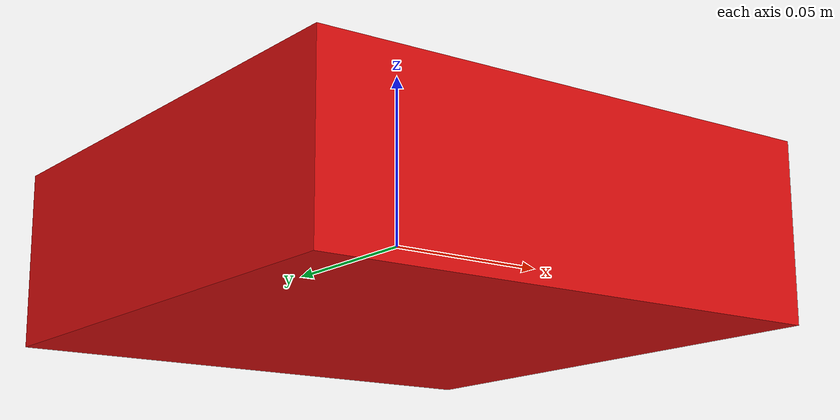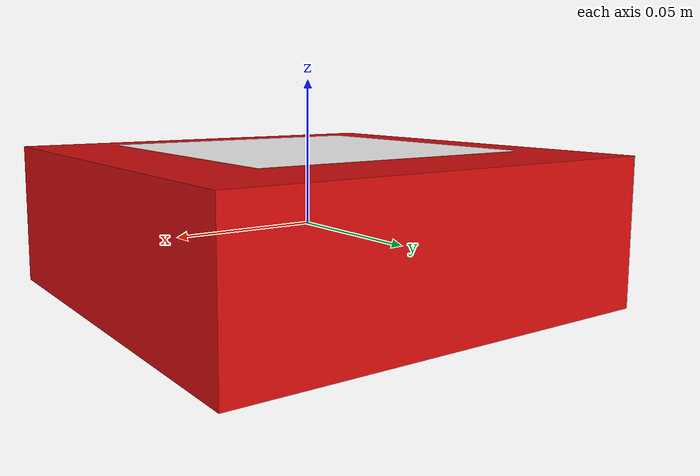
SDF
<?xml version='1.0' encoding='utf-8'?>
<sdf version="1.9">
  <model name="payload_2">
    <link name="body">
      <inertial>
        <mass>1.133981</mass>
        <inertia>
          <ixx>0.002439</ixx>
          <iyy>0.002439</iyy>
          <izz>0.00439</izz>
          <ixy>0</ixy>
          <ixz>0</ixz>
          <iyz>0</iyz>
        </inertia>
      </inertial>
      <collision name="body_collision">
        <geometry>
          <box>
            <size>0.1524 0.1524 0.0508</size>
          </box>
        </geometry>
      </collision>
      <visual name="body_visual">
        <geometry>
          <box>
            <size>0.1524 0.1524 0.0508</size>
          </box>
        </geometry>
        <material>
          <ambient>0.85 0.05 0.05 1</ambient>
          <diffuse>0.85 0.05 0.05 1</diffuse>
        </material>
      </visual>
      <visual name="marker">
        <pose>0 0 0.0264 0 0 0</pose>
        <geometry>
          <plane>
            <normal>0 0 1</normal>
            <size>0.1 0.1</size>
          </plane>
        </geometry>
        <material>
          <ambient>1 1 1 1</ambient>
          <diffuse>1 1 1 1</diffuse>
          <specular>0 0 0 1</specular>
          <pbr>
            <metal>
              <albedo_map>materials/textures/marker_2.png</albedo_map>
              <roughness>1</roughness>
              <metalness>0</metalness>
            </metal>
          </pbr>
        </material>
      </visual>
      <sensor name="ground_contact" type="contact">
        <topic>/gazebo/private/payload/2/contacts</topic>
        <always_on>true</always_on>
        <update_rate>20</update_rate>
        <contact>
          <collision>body_collision</collision>
        </contact>
      </sensor>
    </link>
    <plugin filename="gz-sim-pose-publisher-system" name="gz::sim::systems::PosePublisher">
      <publish_link_pose>false</publish_link_pose>
      <publish_visual_pose>false</publish_visual_pose>
      <publish_collision_pose>false</publish_collision_pose>
      <publish_sensor_pose>false</publish_sensor_pose>
      <publish_model_pose>true</publish_model_pose>
      <publish_nested_model_pose>false</publish_nested_model_pose>
      <use_pose_vector_msg>true</use_pose_vector_msg>
      <update_frequency>20</update_frequency>
    </plugin>
  </model>
</sdf>
